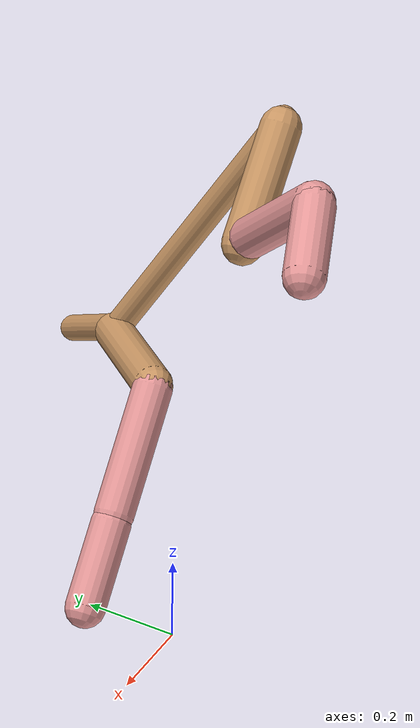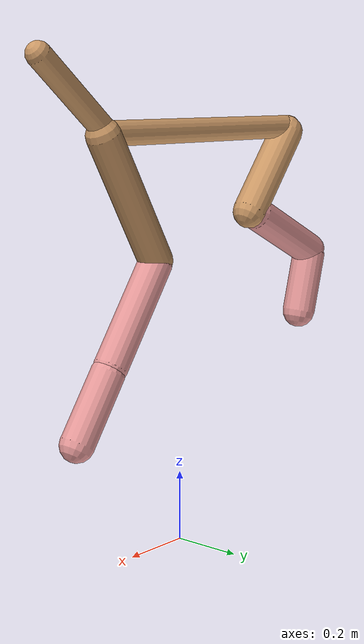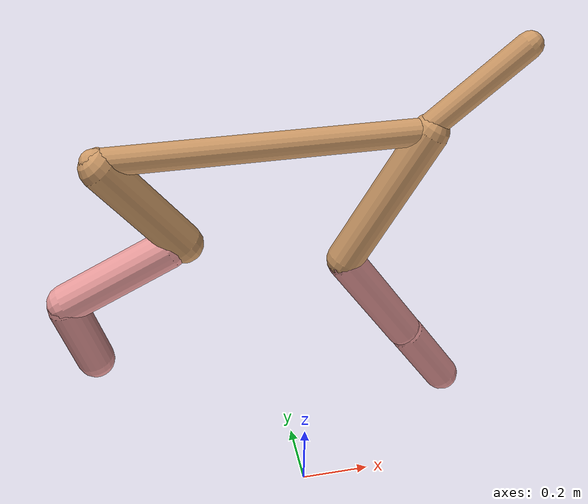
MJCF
<mujoco model="cheetah">
  <compiler angle="radian" coordinate="local" inertiafromgeom="true" settotalmass="14" />
  <default>
    <joint armature=".1" damping=".01" limited="true" solimplimit="0 .8 .03" solreflimit=".02 1" stiffness="8" />
    <geom conaffinity="0" condim="3" contype="1" friction="0.8 .1 .1" rgba="0.8 0.6 .4 1" solimp="0.0 0.8 0.01" solref="0.02 1" />
    <motor ctrllimited="true" ctrlrange="-1 1" />
  </default>
  <size nstack="300000" nuser_geom="1" />
  <option gravity="0 0 -9.81" timestep="0.01" />
  <worldbody>
    <body name="torso" pos="0.0 0.0 1.1640887337026138">
      <joint armature="0" axis="1 0 0" damping="0" limited="false" name="ignorex" pos="0 0 0" stiffness="0" type="slide" />
      <joint armature="0" axis="0 0 1" damping="0" limited="false" name="ignorez" pos="0 0 0" stiffness="0" type="slide" />
      <joint armature="0" axis="0 1 0" damping="0" limited="false" name="ignorey" pos="0 0 0" stiffness="0" type="hinge" />
      <geom fromto="-0.5 0.0 0.0 0.2977611992280082 0.0 0.0" name="torso" size="0.03359961312664019" type="capsule" />
      <geom axisangle="0 1 0 .87" name="head" pos="0.39776119922800823 0.0 0.1" size="0.03302367776364534 0.15" type="capsule" />

      <body name="bthigh" pos="-.5 0 0">
        <joint axis="0 1 0" damping="6" name="bthigh" pos="0 0 0" range="-.52 1.05" stiffness="240" type="hinge" />
        <geom axisangle="0 1 0 -3.8" name="bthigh" pos="0.09939985080494924 0.0 -0.12921980604643402" size="0.049309478841178346 0.1440156821339115" type="capsule" />
        <body name="bshin" pos="0.15879970160989848 0.0 -0.24843961209286802">
          <joint axis="0 1 0" damping="4.5" name="bshin" pos="0 0 0" range="-.785 .785" stiffness="180" type="hinge" />
          <geom axisangle="0 1 0 -2.03" name="bshin" pos="-0.13908924069239667 0.0 -0.06954462034619834" rgba="0.9 0.6 0.6 1" size="0.049309478841178346 0.14898174013852913" type="capsule" />
          <body name="bfoot" pos="-0.27817848138479334 0.0 -0.13908924069239667">
            <joint axis="0 1 0" damping="3" name="bfoot" pos="0 0 0" range="-.4 .785" stiffness="120" type="hinge" />
            <geom axisangle="0 1 0 -.27" name="bfoot" pos="0.029811457958944285 0.0 -0.09639038073391987" rgba="0.9 0.6 0.6 1" size="0.049309478841178346 0.09336189048681161" type="capsule" />
            <inertial mass="10" />
          </body>
        </body>
      </body>
      <body name="fthigh" pos="0.29776119922800826 0.0 0.0">
        <joint axis="0 1 0" damping="4.5" name="fthigh" pos="0 0 0" range="-1.5 0.8" stiffness="180" type="hinge" />
        <geom axisangle="0 1 0 .52" name="fthigh" pos="-0.1025322543960179 0.0 -0.1757695789646021" size="0.047552371802622125 0.19756464600674442" type="capsule" />
        <body name="fshin" pos="-0.2050645087920358 0.0 -0.3515391579292042">
          <joint axis="0 1 0" damping="3" name="fshin" pos="0 0 0" range="-1.2 1.1" stiffness="120" type="hinge" />
          <geom axisangle="0 1 0 -.6" name="fshin" pos="0.09512790208286387 0.0 -0.1317155567301192" rgba="0.9 0.6 0.6 1" size="0.047552371802622125 0.15745753741890908" type="capsule" />
          <body name="ffoot" pos="0.19025580416572774 0.0 -0.2634311134602384">
            <joint axis="0 1 0" damping="1.5" name="ffoot" pos="0 0 0" range="-3.1 -0.3" stiffness="60" type="hinge" />
            <geom axisangle="0 1 0 -.6" name="ffoot" pos="0.06337569603085041 0.0 -0.09858441604798956" rgba="0.9 0.6 0.6 1" size="0.047552371802622125 0.10398139263512865" type="capsule" />
            <inertial mass="10" />
          </body>
        </body>
      </body>
    </body>
  </worldbody>
  <actuator>
    <motor gear="120" joint="bthigh" name="bthigh" />
    <motor gear="90" joint="bshin" name="bshin" />
    <motor gear="60" joint="bfoot" name="bfoot" />
    <motor gear="120" joint="fthigh" name="fthigh" />
    <motor gear="60" joint="fshin" name="fshin" />
    <motor gear="30" joint="ffoot" name="ffoot" />
  </actuator>
</mujoco>
